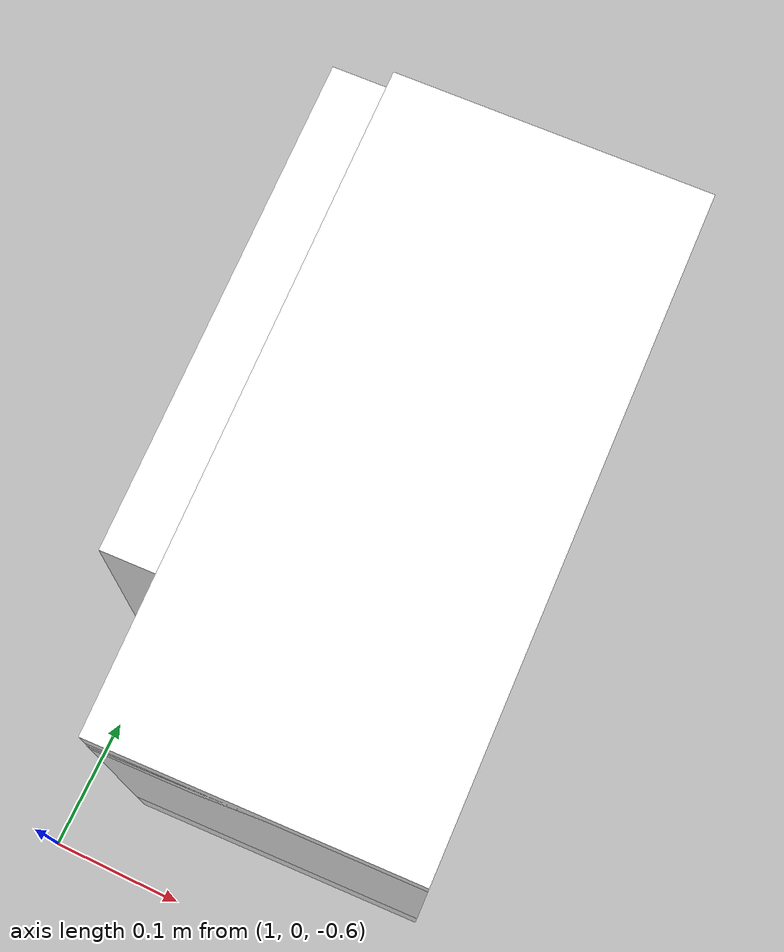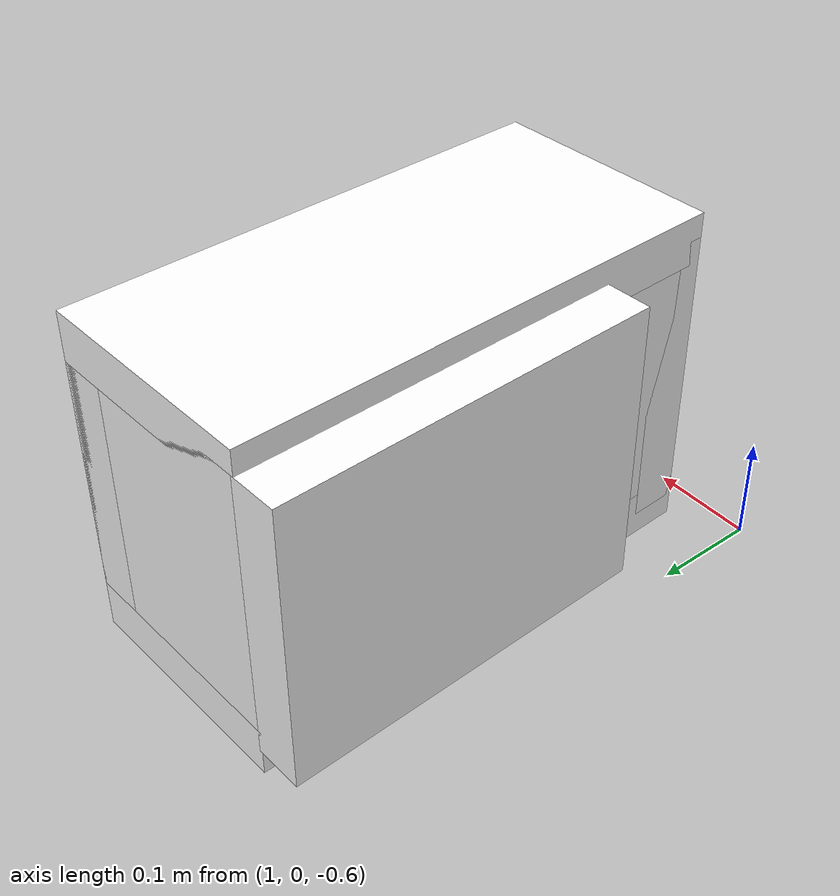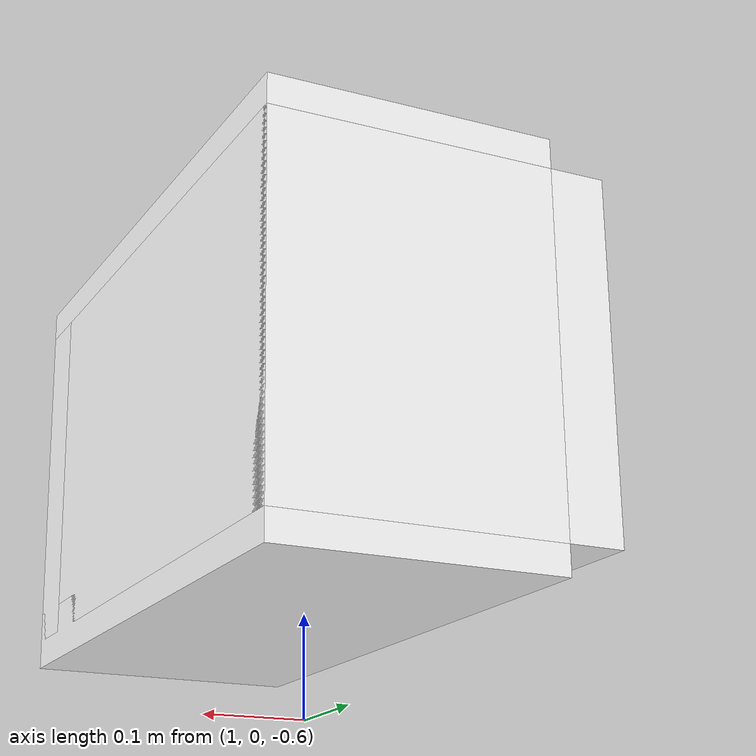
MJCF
<mujoco model="cabinet">
    <compiler angle="radian" eulerseq='zxy' />
    <option gravity = "0 0 0" />
    <option>
        <flag contact = "disable"/>
    </option>
    <statistic	extent="1.0" center="0.0 0.0 0.0"/>
    <visual>
        <map fogstart="3" fogend="5" force="0.1" znear=" 0.100000 " zfar=" 12.000000 "/>
    </visual>
    <size njmax="500" nconmax="100" />
    <actuator>
        <velocity joint="bottom_left_hinge" name="viva_revolution" kv='10'></velocity>
    </actuator>
    <asset>
        <texture builtin="flat" name="tabletex" height="32" width="32" rgb1="1 1 1" type="cube"></texture>
        <texture builtin="flat" name="objtex" height="32" width="32" rgb1="1 1 1" type="cube"></texture>
        <texture builtin="flat" name="handletex" height="32" width="32" rgb1="1 1 1" type="cube"></texture>
        <texture builtin="flat" name="wallpaper" height="32" width="32" rgb1="1 1 1" type="cube"></texture>
        <texture builtin="flat" name="kp" height="32" width="32" rgb1="1 1 1" type="cube"></texture>
        <material name="geomTable" shininess="0.03" specular="0.75" texture="tabletex"></material>
        <material name="geomObj" shininess="0.03" specular="0.75" texture="objtex"></material>
        <material name="geomHandle" shininess="0.03" specular="0.75" texture="handletex"></material>
        <material name="bg" shininess="0.03" specular="0.75" texture="wallpaper"></material>
        <material name="geomKeypad" shininess="0.03" specular="0.75" texture="kp"></material>
    </asset>
    <worldbody>
        <body name="cabinet_bottom" pos= " 1.148580 0.290465 -0.557094 "  quat= " -0.019360 0.000000 0.000000 0.999813" >
            <inertial pos="0 0 0" mass="1" diaginertia="1 1 1" />
            <geom size= " 0.109807 0.233451 0.022983 "  type="box" material="geomObj" name="b"/>
            <body name="cabinet_left" pos= " 0.000000 -0.210468 0.136694 " >
                <inertial pos="0 0 0" mass="1" diaginertia="1 1 1" />
                <geom size= " 0.109807 0.022983 0.136694 "  type="box" material="geomObj" name="c" />
            </body>
            <body name="cabinet_right" pos= " 0.000000 0.210468 0.136694 " >
                <inertial pos="0 0 0" mass="1" diaginertia="1 1 1" />
                <geom size= " 0.109807 0.022983 0.136694 "  type="box" material="geomObj" name="d" />
            </body>
            <body name="cabinet_top" pos= " 0.000000 0.000000 0.273388 " >
                <inertial pos="0 0 0" mass="1" diaginertia="1 1 1" />
                <geom size= " 0.109807 0.233451 0.022983 "  type="box" material="geomObj" name="e"/>
            </body>
            <body name="cabinet_back" pos= " -0.086824 0.000000 0.136694 "  >
                <inertial pos="0 0 0" mass="1" diaginertia="1 1 1" />
                <geom size= " 0.022983 0.233451 0.136694 "  type="box" material="geomObj" name="f" />
            </body>
            <body name="cabinet_keypad" pos= " 0.022983 0.177546 0.136694 " >
                <inertial pos="0 0 0" mass="1" diaginertia="1 1 1" />
                <geom size= " 0.086824 0.054905 0.113711 "  type="box" material="geomKeypad" name="keypizzlemynizzle" />
            </body>
            <body name="cabinet_left_hinge" pos= " 0.109807 -0.054905 0.000000 " >
                <inertial pos= " 0.020000 0.000000 0.136694 "  mass="1" diaginertia="1 1 1" />
                <joint name="bottom_left_hinge" type="hinge" pos="0 0 0" axis="0 1 0" limited="true" range= "0 2.3"  />
                <geom size= " 0.022983 0.178546 0.136694 "  pos= " 0.020000 0.000000 0.136694 "  type="box" material="geomObj" name="g"/>
                <body name="handle_link" pos= " 0.027452 0.000000 0.227422 " >
                    <inertial pos="0 0 0" mass="1" diaginertia="1 1 1" />
                    <geom size= " 0.015513 0.054905 0.016951 "  type="box" material="geomHandle" name="h"/>
                </body>
            </body>
        </body>
        <body name="external_camera_body_0" pos="0.0 0 0.00">
            <camera euler="-1.57 1.57 0.0" fovy=" 54.280851 " name="external_camera_0" pos="0.0 0 0"></camera>
            <inertial pos= " 0.00 0.0 0.000000 " mass="1" diaginertia="1 1 1" />
            <joint name="cam_j" pos="0.0 0 0" axis = "1 0 0" type="free" />
        </body>
    </worldbody>
</mujoco>
